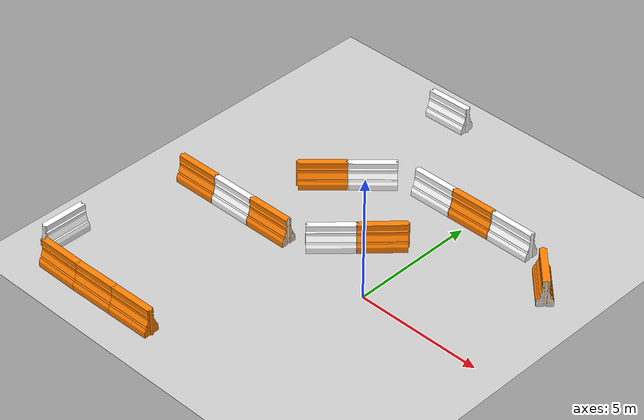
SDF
<sdf version="1.6">
 <world name="default">
  <light name="sun" type="directional">
   <pose>0 0 10 0 -0 0</pose>
   <diffuse>0.8 0.8 0.8 1</diffuse>
   <specular>0.2 0.2 0.2 1</specular>
   <attenuation>
    <range>1000</range>
    <constant>0.9</constant>
    <linear>0.01</linear>
    <quadratic>0.001</quadratic>
   </attenuation>
   <direction>-0.5 0.1 -0.9</direction>
  </light>
  <model name="ground_plane">
   <static>1</static>
   <link name="link">
    <collision name="collision">
     <geometry><plane><normal>0 0 1</normal><size>100 100</size></plane></geometry>
     <surface><friction><ode><mu>100</mu><mu2>50</mu2></ode></friction></surface>
    </collision>
    <visual name="visual">
     <cast_shadows>0</cast_shadows>
     <geometry><plane><normal>0 0 1</normal><size>100 100</size></plane></geometry>
     <material>
      <script><uri>file://media/materials/scripts/gazebo.material</uri><name>Gazebo/Grey</name></script>
     </material>
    </visual>
    <velocity_decay><linear>0</linear><angular>0</angular></velocity_decay>
   </link>
  </model>
  <physics name="default_physics" default="0" type="ode">
   <max_step_size>0.001</max_step_size>
   <real_time_factor>1</real_time_factor>
   <real_time_update_rate>1000</real_time_update_rate>
  </physics>
  <scene><ambient>0.4 0.4 0.4 1</ambient><background>0.7 0.7 0.7 1</background><shadows>1</shadows></scene>
  <spherical_coordinates>
   <surface_model>EARTH_WGS84</surface_model>
   <latitude_deg>0</latitude_deg>
   <longitude_deg>0</longitude_deg>
   <elevation>0</elevation>
   <heading_deg>0</heading_deg>
  </spherical_coordinates>
  <model name="drc_practice_organge_jersey_barrier">
   <static>1</static>
   <link name="link">
    <visual name="visual">
     <geometry>
      <mesh><uri>model://drc_practice_orange_jersey_barrier/meshes/jersey_barrier.dae</uri></mesh>
     </geometry>
    </visual>
    <collision name="collision">
     <geometry>
      <mesh><uri>model://drc_practice_orange_jersey_barrier/meshes/jersey_barrier.dae</uri></mesh>
     </geometry>
    </collision>
    <velocity_decay><linear>0</linear><angular>0</angular></velocity_decay>
   </link>
   <pose>-4.54889 -6.23392 0 0 -0 1.59364</pose>
  </model>
  <model name="drc_practice_white_jersey_barrier">
   <static>1</static>
   <link name="link">
    <visual name="visual">
     <geometry>
      <mesh><uri>model://drc_practice_white_jersey_barrier/meshes/jersey_barrier.dae</uri></mesh>
     </geometry>
    </visual>
    <collision name="collision">
     <geometry>
      <mesh><uri>model://drc_practice_white_jersey_barrier/meshes/jersey_barrier.dae</uri></mesh>
     </geometry>
    </collision>
    <velocity_decay><linear>0</linear><angular>0</angular></velocity_decay>
   </link>
   <pose>-9.48699 -4.9367 0 0 -0 0</pose>
  </model>
  <model name="drc_practice_organge_jersey_barrier_0">
   <static>1</static>
   <link name="link">
    <visual name="visual">
     <geometry>
      <mesh><uri>model://drc_practice_orange_jersey_barrier/meshes/jersey_barrier.dae</uri></mesh>
     </geometry>
    </visual>
    <collision name="collision">
     <geometry>
      <mesh><uri>model://drc_practice_orange_jersey_barrier/meshes/jersey_barrier.dae</uri></mesh>
     </geometry>
    </collision>
    <velocity_decay><linear>0</linear><angular>0</angular></velocity_decay>
   </link>
   <pose>-6.30934 -6.26351 0 0 -0 1.59467</pose>
  </model>
  <model name="drc_practice_organge_jersey_barrier_1">
   <static>1</static>
   <link name="link">
    <visual name="visual">
     <geometry>
      <mesh><uri>model://drc_practice_orange_jersey_barrier/meshes/jersey_barrier.dae</uri></mesh>
     </geometry>
    </visual>
    <collision name="collision">
     <geometry>
      <mesh><uri>model://drc_practice_orange_jersey_barrier/meshes/jersey_barrier.dae</uri></mesh>
     </geometry>
    </collision>
    <velocity_decay><linear>0</linear><angular>0</angular></velocity_decay>
   </link>
   <pose>-8.06556 -6.2736 0 0 -0 1.57109</pose>
  </model>
  <model name="drc_practice_white_jersey_barrier_1">
   <static>1</static>
   <link name="link">
    <visual name="visual">
     <geometry>
      <mesh><uri>model://drc_practice_white_jersey_barrier/meshes/jersey_barrier.dae</uri></mesh>
     </geometry>
    </visual>
    <collision name="collision">
     <geometry>
      <mesh><uri>model://drc_practice_white_jersey_barrier/meshes/jersey_barrier.dae</uri></mesh>
     </geometry>
    </collision>
    <velocity_decay><linear>0</linear><angular>0</angular></velocity_decay>
   </link>
   <pose>-4.54271 9.38577 0 0 -0 1.59123</pose>
  </model>
  <gravity>0 0 -9.8</gravity>
  <magnetic_field>6e-06 2.3e-05 -4.2e-05</magnetic_field>
  <atmosphere type="adiabatic"/>
  <audio><device>default</device></audio>
  <model name="drc_practice_white_jersey_barrier_clone">
   <static>1</static>
   <link name="link">
    <visual name="visual">
     <geometry>
      <mesh><uri>model://drc_practice_white_jersey_barrier/meshes/jersey_barrier.dae</uri></mesh>
     </geometry>
    </visual>
    <collision name="collision">
     <geometry>
      <mesh><uri>model://drc_practice_white_jersey_barrier/meshes/jersey_barrier.dae</uri></mesh>
     </geometry>
    </collision>
    <velocity_decay><linear>0</linear><angular>0</angular></velocity_decay>
   </link>
   <pose>-1.71192 5.49142 0 0 0 -1.56207</pose>
  </model>
  <model name="drc_practice_organge_jersey_barrier_1_clone_clone">
   <static>1</static>
   <link name="link">
    <visual name="visual">
     <geometry>
      <mesh><uri>model://drc_practice_orange_jersey_barrier/meshes/jersey_barrier.dae</uri></mesh>
     </geometry>
    </visual>
    <collision name="collision">
     <geometry>
      <mesh><uri>model://drc_practice_orange_jersey_barrier/meshes/jersey_barrier.dae</uri></mesh>
     </geometry>
    </collision>
    <velocity_decay><linear>0</linear><angular>0</angular></velocity_decay>
   </link>
   <pose>4.0361 4.55595 0 0 -0 -2.36955</pose>
  </model>
  <model name="drc_practice_organge_jersey_barrier_1_clone_clone_1">
   <static>1</static>
   <link name="link">
    <visual name="visual">
     <geometry>
      <mesh><uri>model://drc_practice_orange_jersey_barrier/meshes/jersey_barrier.dae</uri></mesh>
     </geometry>
    </visual>
    <collision name="collision">
     <geometry>
      <mesh><uri>model://drc_practice_orange_jersey_barrier/meshes/jersey_barrier.dae</uri></mesh>
     </geometry>
    </collision>
    <velocity_decay><linear>0</linear><angular>0</angular></velocity_decay>
   </link>
   <pose>0.058135 5.50338 0 0 0 -1.5573</pose>
  </model>
  <model name="drc_practice_white_jersey_barrier_clone_clone_0">
   <static>1</static>
   <link name="link">
    <visual name="visual">
     <geometry>
      <mesh><uri>model://drc_practice_white_jersey_barrier/meshes/jersey_barrier.dae</uri></mesh>
     </geometry>
    </visual>
    <collision name="collision">
     <geometry>
      <mesh><uri>model://drc_practice_white_jersey_barrier/meshes/jersey_barrier.dae</uri></mesh>
     </geometry>
    </collision>
    <velocity_decay><linear>0</linear><angular>0</angular></velocity_decay>
   </link>
   <pose>1.83491 5.51035 0 0 0 -1.5676</pose>
  </model>
  <model name="drc_practice_white_jersey_barrier_clone_clone_1">
   <static>1</static>
   <link name="link">
    <visual name="visual">
     <geometry>
      <mesh><uri>model://drc_practice_white_jersey_barrier/meshes/jersey_barrier.dae</uri></mesh>
     </geometry>
    </visual>
    <collision name="collision">
     <geometry>
      <mesh><uri>model://drc_practice_white_jersey_barrier/meshes/jersey_barrier.dae</uri></mesh>
     </geometry>
    </collision>
    <velocity_decay><linear>0</linear><angular>0</angular></velocity_decay>
   </link>
   <pose>-2.57221 1.10527 0 0 -0 2.36028</pose>
  </model>
  <model name="drc_practice_organge_jersey_barrier_1_clone_clone_1_clone_0">
   <static>1</static>
   <link name="link">
    <visual name="visual">
     <geometry>
      <mesh><uri>model://drc_practice_orange_jersey_barrier/meshes/jersey_barrier.dae</uri></mesh>
     </geometry>
    </visual>
    <collision name="collision">
     <geometry>
      <mesh><uri>model://drc_practice_orange_jersey_barrier/meshes/jersey_barrier.dae</uri></mesh>
     </geometry>
    </collision>
    <velocity_decay><linear>0</linear><angular>0</angular></velocity_decay>
   </link>
   <pose>-5.21579 3.42508 0 0 -0 -0.790303</pose>
  </model>
  <model name="drc_practice_white_jersey_barrier_clone_clone_1_clone">
   <static>1</static>
   <link name="link">
    <visual name="visual">
     <geometry>
      <mesh><uri>model://drc_practice_white_jersey_barrier/meshes/jersey_barrier.dae</uri></mesh>
     </geometry>
    </visual>
    <collision name="collision">
     <geometry>
      <mesh><uri>model://drc_practice_white_jersey_barrier/meshes/jersey_barrier.dae</uri></mesh>
     </geometry>
    </collision>
    <velocity_decay><linear>0</linear><angular>0</angular></velocity_decay>
   </link>
   <pose>-3.93934 4.67216 0 0 -0 -0.7922</pose>
  </model>
  <model name="drc_practice_white_jersey_barrier_clone_clone_2">
   <static>1</static>
   <link name="link">
    <visual name="visual">
     <geometry>
      <mesh><uri>model://drc_practice_white_jersey_barrier/meshes/jersey_barrier.dae</uri></mesh>
     </geometry>
    </visual>
    <collision name="collision">
     <geometry>
      <mesh><uri>model://drc_practice_white_jersey_barrier/meshes/jersey_barrier.dae</uri></mesh>
     </geometry>
    </collision>
    <velocity_decay><linear>0</linear><angular>0</angular></velocity_decay>
   </link>
   <pose>-6.40203 0.22601 0 0 0 -1.56207</pose>
  </model>
  <model name="drc_practice_organge_jersey_barrier_1_clone_clone_1_clone">
   <static>1</static>
   <link name="link">
    <visual name="visual">
     <geometry>
      <mesh><uri>model://drc_practice_orange_jersey_barrier/meshes/jersey_barrier.dae</uri></mesh>
     </geometry>
    </visual>
    <collision name="collision">
     <geometry>
      <mesh><uri>model://drc_practice_orange_jersey_barrier/meshes/jersey_barrier.dae</uri></mesh>
     </geometry>
    </collision>
    <velocity_decay><linear>0</linear><angular>0</angular></velocity_decay>
   </link>
   <pose>-4.63381 0.236543 0 0 0 -1.5573</pose>
  </model>
  <model name="drc_practice_organge_jersey_barrier_1_clone_clone_1_clone_1">
   <static>1</static>
   <link name="link">
    <visual name="visual">
     <geometry>
      <mesh><uri>model://drc_practice_orange_jersey_barrier/meshes/jersey_barrier.dae</uri></mesh>
     </geometry>
    </visual>
    <collision name="collision">
     <geometry>
      <mesh><uri>model://drc_practice_orange_jersey_barrier/meshes/jersey_barrier.dae</uri></mesh>
     </geometry>
    </collision>
    <velocity_decay><linear>0</linear><angular>0</angular></velocity_decay>
   </link>
   <pose>-8.17434 0.216698 0 0 0 -1.5573</pose>
  </model>
  <model name="drc_practice_organge_jersey_barrier_1_clone_clone_1_clone_0_clone">
   <static>1</static>
   <link name="link">
    <visual name="visual">
     <geometry>
      <mesh><uri>model://drc_practice_orange_jersey_barrier/meshes/jersey_barrier.dae</uri></mesh>
     </geometry>
    </visual>
    <collision name="collision">
     <geometry>
      <mesh><uri>model://drc_practice_orange_jersey_barrier/meshes/jersey_barrier.dae</uri></mesh>
     </geometry>
    </collision>
    <velocity_decay><linear>0</linear><angular>0</angular></velocity_decay>
   </link>
   <pose>-1.33381 2.36442 0 0 -0 2.38204</pose>
  </model>
 </world>
</sdf>
